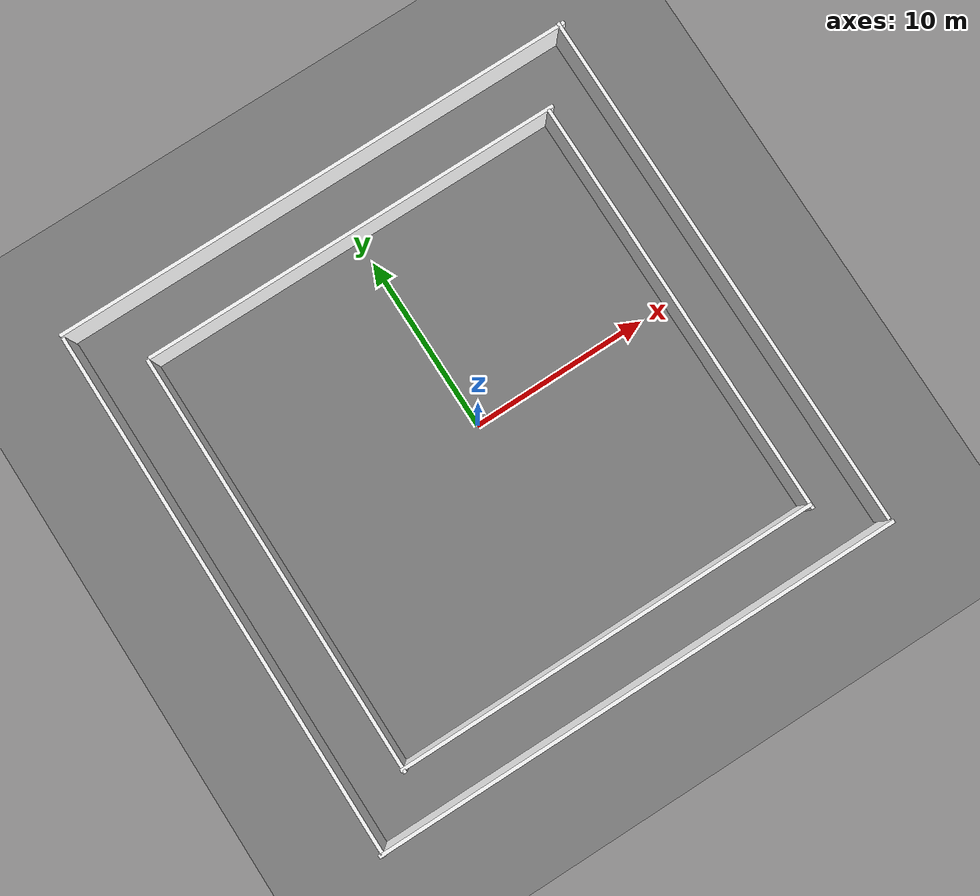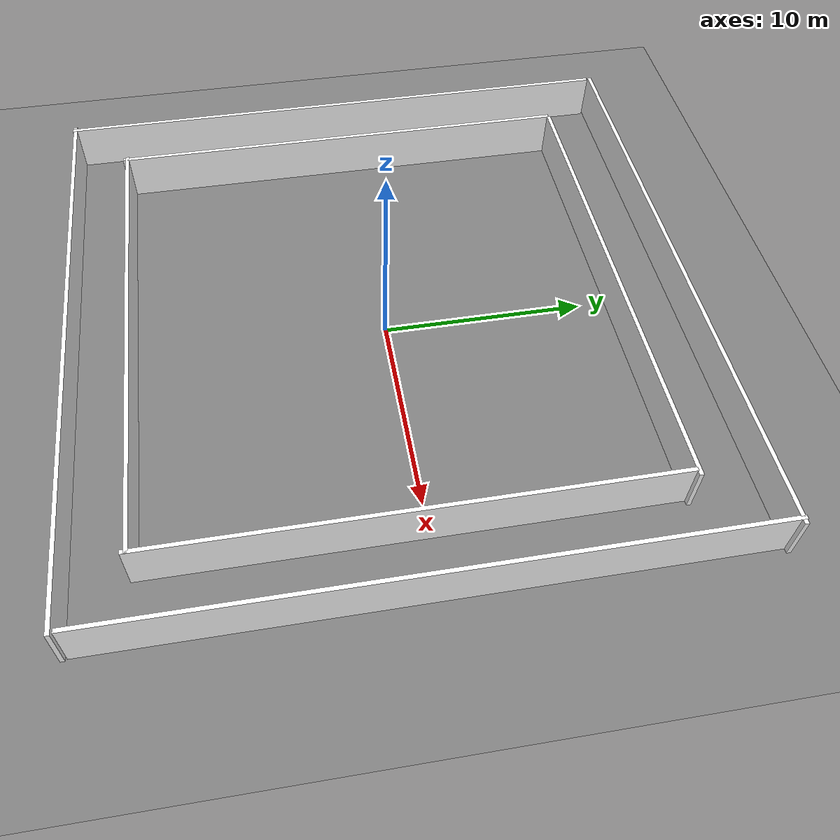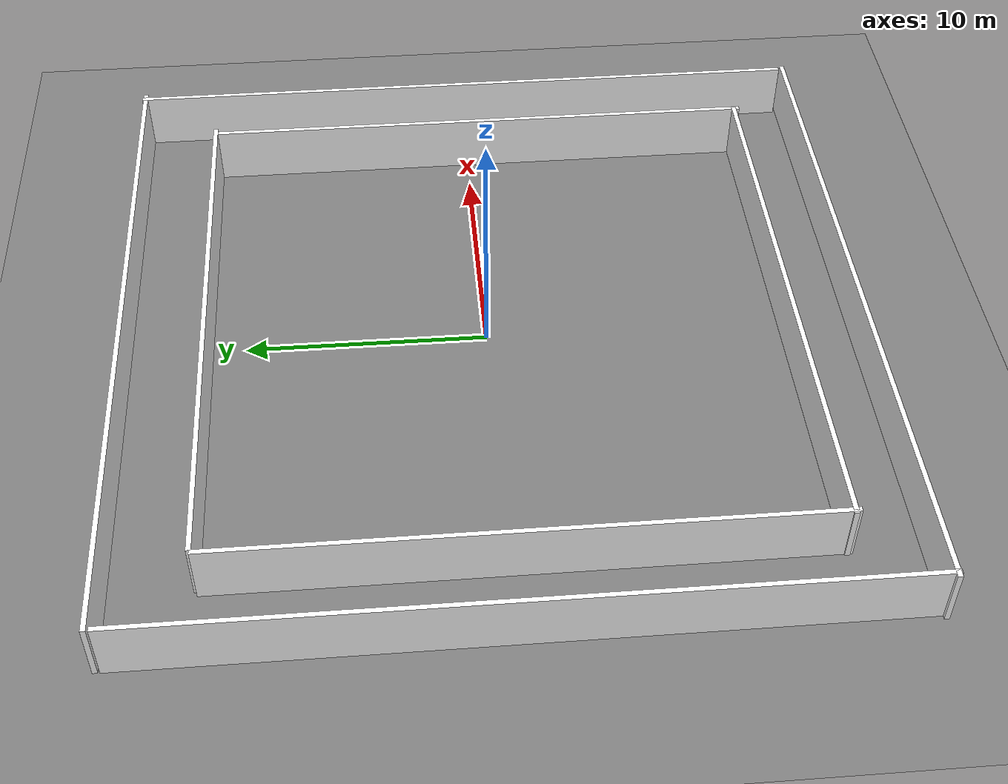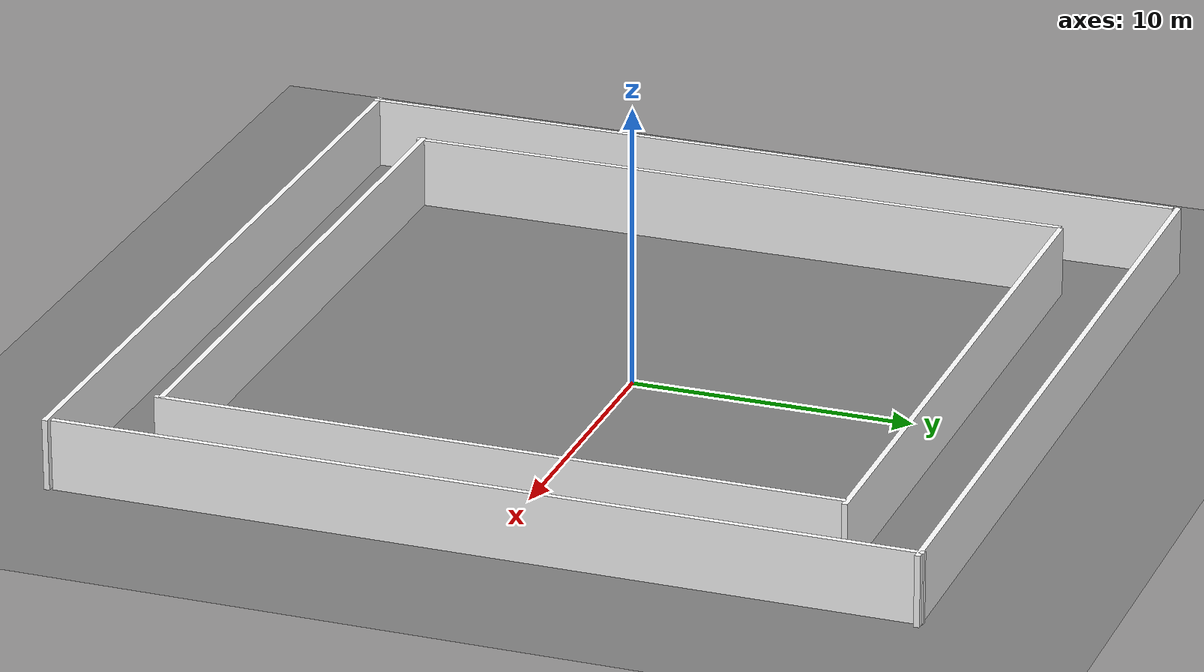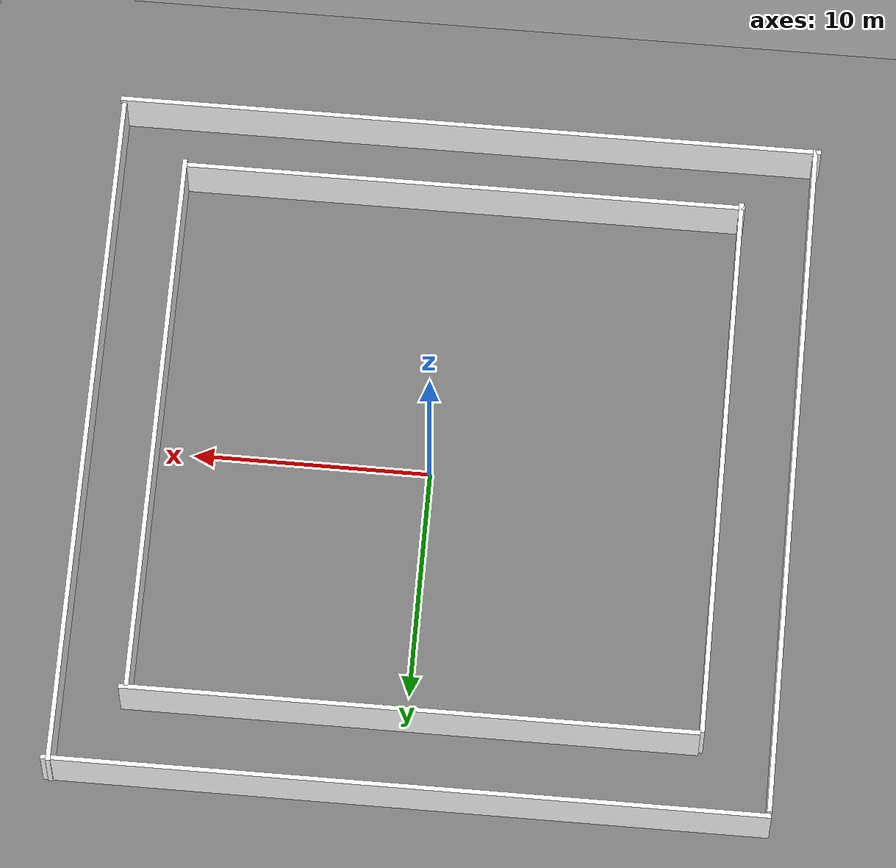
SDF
<sdf version="1.7">
 <world name="circuit">
  <light name="sun" type="directional">
   <pose>0 0 10 0 -0 0</pose>
   <diffuse>0.8 0.8 0.8 1</diffuse>
   <specular>0.2 0.2 0.2 1</specular>
   <attenuation>
    <range>1000</range>
    <constant>0.9</constant>
    <linear>0.01</linear>
    <quadratic>0.001</quadratic>
   </attenuation>
   <direction>-0.5 0.1 -0.9</direction>
   <spot><inner_angle>0</inner_angle><outer_angle>0</outer_angle><falloff>0</falloff></spot>
  </light>
  <model name="ground_plane">
   <static>1</static>
   <link name="link">
    <collision name="collision">
     <geometry><plane><normal>0 0 1</normal><size>100 100</size></plane></geometry>
    </collision>
    <visual name="visual">
     <geometry><plane><normal>0 0 1</normal><size>100 100</size></plane></geometry>
     <material>
      <ambient>0.5 0.5 0.5 1</ambient>
      <diffuse>0.5 0.5 0.5 1</diffuse>
      <specular>0.2 0.2 0.2 1</specular>
     </material>
    </visual>
   </link>
  </model>
  <model name="wall_north">
   <pose>-0.135903 11.454 1.25 0 -0 0</pose>
   <link name="link">
    <collision name="collision"><geometry><box><size>24 0.2 2.5</size></box></geometry></collision>
    <visual name="visual">
     <geometry><box><size>24 0.2 2.5</size></box></geometry>
     <material><ambient>1 1 1 1</ambient><diffuse>1 1 1 1</diffuse><specular>0.2 0.2 0.2 1</specular></material>
    </visual>
   </link>
   <static>1</static>
  </model>
  <model name="wall_south">
   <pose>-0.371267 -12.3496 1.25 0 -0 0</pose>
   <link name="link">
    <collision name="collision"><geometry><box><size>24 0.2 2.5</size></box></geometry></collision>
    <visual name="visual">
     <geometry><box><size>24 0.2 2.5</size></box></geometry>
     <material><ambient>1 1 1 1</ambient><diffuse>1 1 1 1</diffuse><specular>0.2 0.2 0.2 1</specular></material>
    </visual>
   </link>
   <static>1</static>
  </model>
  <model name="wall_east">
   <pose>11.5527 -0.595592 1.25 0 -0 0</pose>
   <link name="link">
    <collision name="collision"><geometry><box><size>0.2 24 2.5</size></box></geometry></collision>
    <visual name="visual">
     <geometry><box><size>0.2 24 2.5</size></box></geometry>
     <material><ambient>1 1 1 1</ambient><diffuse>1 1 1 1</diffuse><specular>0.2 0.2 0.2 1</specular></material>
    </visual>
   </link>
   <static>1</static>
  </model>
  <model name="wall_west">
   <pose>-12.2068 -0.563561 1.25 0 -0 0</pose>
   <link name="link">
    <collision name="collision"><geometry><box><size>0.2 24 2.5</size></box></geometry></collision>
    <visual name="visual">
     <geometry><box><size>0.2 24 2.5</size></box></geometry>
     <material><ambient>1 1 1 1</ambient><diffuse>1 1 1 1</diffuse><specular>0.2 0.2 0.2 1</specular></material>
    </visual>
   </link>
   <static>1</static>
  </model>
  <model name="wall_west_clone">
   <pose>-15.1845 -0.366222 1.25 0 -0 0</pose>
   <link name="link">
    <collision name="collision"><geometry><box><size>0.2 30 2.5</size></box></geometry></collision>
    <visual name="visual">
     <geometry><box><size>0.2 30 2.5</size></box></geometry>
     <material><ambient>1 1 1 1</ambient><diffuse>1 1 1 1</diffuse><specular>0.2 0.2 0.2 1</specular></material>
    </visual>
   </link>
   <static>1</static>
  </model>
  <model name="wall_east_clone">
   <pose>14.4123 -0.045132 1.25 0 -0 0</pose>
   <link name="link">
    <collision name="collision"><geometry><box><size>0.2 30 2.5</size></box></geometry></collision>
    <visual name="visual">
     <geometry><box><size>0.2 30 2.5</size></box></geometry>
     <material><ambient>1 1 1 1</ambient><diffuse>1 1 1 1</diffuse><specular>0.2 0.2 0.2 1</specular></material>
    </visual>
   </link>
   <static>1</static>
  </model>
  <model name="wall_north_clone">
   <pose>-0.276708 14.8073 1.25 0 -0 0</pose>
   <link name="link">
    <collision name="collision"><geometry><box><size>30 0.2 2.5</size></box></geometry></collision>
    <visual name="visual">
     <geometry><box><size>30 0.2 2.5</size></box></geometry>
     <material><ambient>1 1 1 1</ambient><diffuse>1 1 1 1</diffuse><specular>0.2 0.2 0.2 1</specular></material>
    </visual>
   </link>
   <static>1</static>
  </model>
  <model name="wall_south_clone">
   <pose>-0.419576 -15.2282 1.25 0 -0 0</pose>
   <link name="link">
    <collision name="collision"><geometry><box><size>30 0.2 2.5</size></box></geometry></collision>
    <visual name="visual">
     <geometry><box><size>30 0.2 2.5</size></box></geometry>
     <material><ambient>1 1 1 1</ambient><diffuse>1 1 1 1</diffuse><specular>0.2 0.2 0.2 1</specular></material>
    </visual>
   </link>
   <static>1</static>
  </model>
  <gravity>0 0 -9.8</gravity>
  <magnetic_field>6e-06 2.3e-05 -4.2e-05</magnetic_field>
  <atmosphere type="adiabatic"/>
  <physics type="ode">
   <max_step_size>0.001</max_step_size>
   <real_time_factor>1</real_time_factor>
   <real_time_update_rate>1000</real_time_update_rate>
  </physics>
  <scene><ambient>0.4 0.4 0.4 1</ambient><background>0.7 0.7 0.7 1</background><shadows>1</shadows></scene>
  <spherical_coordinates>
   <surface_model>EARTH_WGS84</surface_model>
   <latitude_deg>0</latitude_deg>
   <longitude_deg>0</longitude_deg>
   <elevation>0</elevation>
   <heading_deg>0</heading_deg>
  </spherical_coordinates>
 </world>
</sdf>
